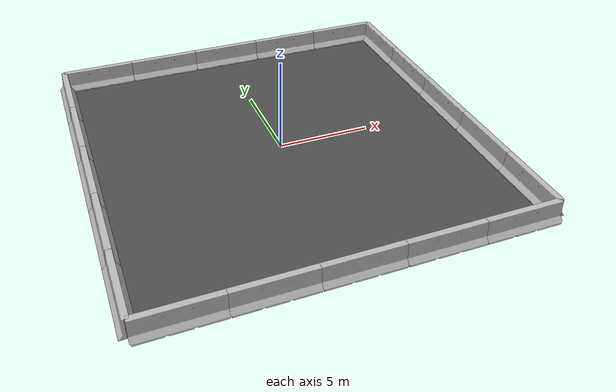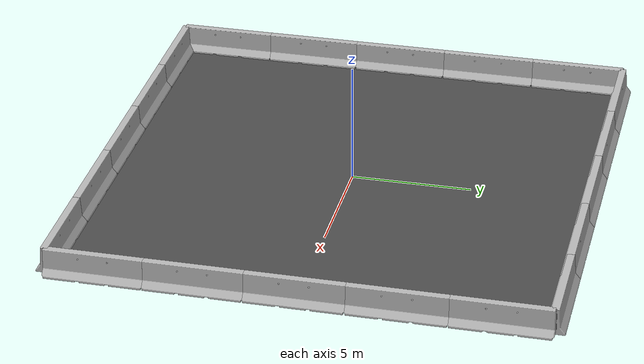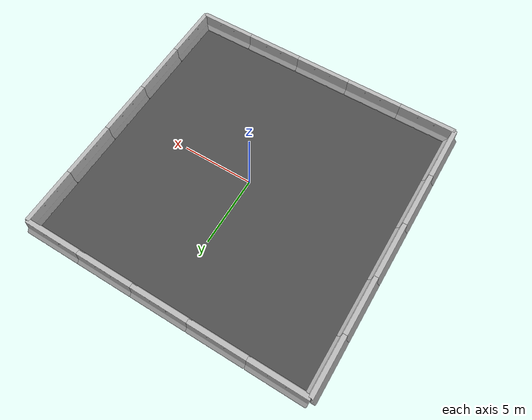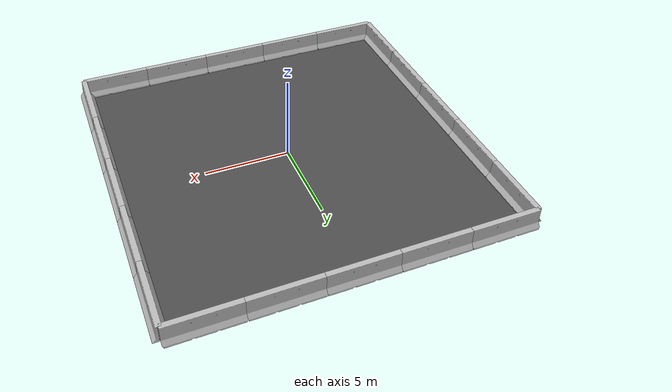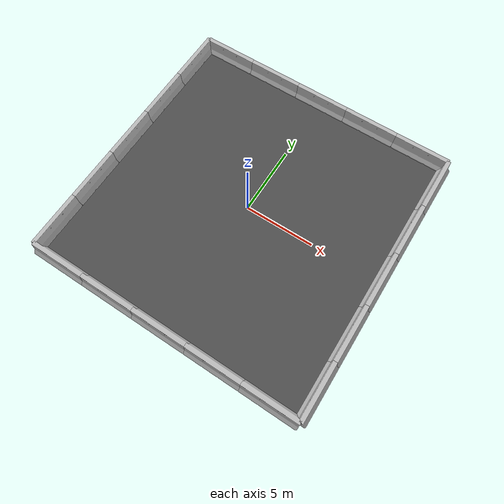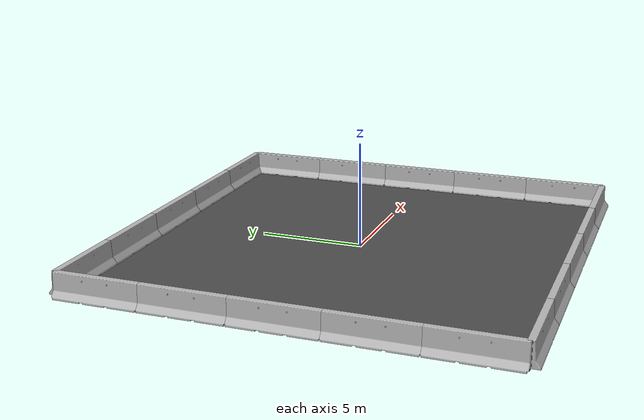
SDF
<sdf version="1.7">
 <world name="default">
  <light name="sun" type="directional">
   <pose>0 0 10 0 -0 0</pose>
   <diffuse>0.8 0.8 0.8 1</diffuse>
   <specular>0.2 0.2 0.2 1</specular>
   <attenuation>
    <range>1000</range>
    <constant>0.9</constant>
    <linear>0.01</linear>
    <quadratic>0.001</quadratic>
   </attenuation>
   <direction>-0.5 0.1 -0.9</direction>
   <spot><inner_angle>0</inner_angle><outer_angle>0</outer_angle><falloff>0</falloff></spot>
  </light>
  <gravity>0 0 -9.8</gravity>
  <magnetic_field>6e-06 2.3e-05 -4.2e-05</magnetic_field>
  <atmosphere type="adiabatic"/>
  <physics type="ode">
   <max_step_size>0.001</max_step_size>
   <real_time_factor>1</real_time_factor>
   <real_time_update_rate>1000</real_time_update_rate>
  </physics>
  <scene><ambient>0.4 0.4 0.4 1</ambient><background>0.7 0.7 0.7 1</background><shadows>1</shadows></scene>
  <spherical_coordinates>
   <surface_model>EARTH_WGS84</surface_model>
   <latitude_deg>0</latitude_deg>
   <longitude_deg>0</longitude_deg>
   <elevation>0</elevation>
   <heading_deg>0</heading_deg>
  </spherical_coordinates>
  <audio><device>default</device></audio>
  <model name="jersey_barrier">
   <static>1</static>
   <link name="link">
    <visual name="visual">
     <geometry><mesh><uri>model://jersey_barrier/meshes/jersey_barrier.dae</uri></mesh></geometry>
    </visual>
    <collision name="upright">
     <pose>0 0 0.5715 0 -0 0</pose>
     <geometry><box><size>4.06542 0.3063 1.143</size></box></geometry>
    </collision>
    <collision name="base">
     <pose>0 0 0.032258 0 -0 0</pose>
     <geometry><box><size>4.06542 0.8107 0.064516</size></box></geometry>
    </collision>
    <collision name="base2">
     <pose>0 0 0.1 0 -0 0</pose>
     <geometry><box><size>4.06542 0.65 0.1</size></box></geometry>
    </collision>
    <collision name="base3">
     <pose>0 0 0.2 0 -0 0</pose>
     <geometry><box><size>4.06542 0.5 0.1</size></box></geometry>
    </collision>
    <collision name="left-angle">
     <pose>0 -0.224 0.2401 0.9 -0 0</pose>
     <geometry><box><size>4.06542 0.5 0.064516</size></box></geometry>
    </collision>
    <collision name="right-angle">
     <pose>0 0.224 0.2401 -0.9 0 0</pose>
     <geometry><box><size>4.06542 0.5 0.064516</size></box></geometry>
    </collision>
   </link>
   <pose>8 10 0 0 -0 0</pose>
  </model>
  <model name="jersey_barrier_0">
   <static>1</static>
   <link name="link">
    <visual name="visual">
     <geometry><mesh><uri>model://jersey_barrier/meshes/jersey_barrier.dae</uri></mesh></geometry>
    </visual>
    <collision name="upright">
     <pose>0 0 0.5715 0 -0 0</pose>
     <geometry><box><size>4.06542 0.3063 1.143</size></box></geometry>
    </collision>
    <collision name="base">
     <pose>0 0 0.032258 0 -0 0</pose>
     <geometry><box><size>4.06542 0.8107 0.064516</size></box></geometry>
    </collision>
    <collision name="base2">
     <pose>0 0 0.1 0 -0 0</pose>
     <geometry><box><size>4.06542 0.65 0.1</size></box></geometry>
    </collision>
    <collision name="base3">
     <pose>0 0 0.2 0 -0 0</pose>
     <geometry><box><size>4.06542 0.5 0.1</size></box></geometry>
    </collision>
    <collision name="left-angle">
     <pose>0 -0.224 0.2401 0.9 -0 0</pose>
     <geometry><box><size>4.06542 0.5 0.064516</size></box></geometry>
    </collision>
    <collision name="right-angle">
     <pose>0 0.224 0.2401 -0.9 0 0</pose>
     <geometry><box><size>4.06542 0.5 0.064516</size></box></geometry>
    </collision>
   </link>
   <pose>4 -10 0 0 -0 0</pose>
  </model>
  <model name="jersey_barrier_1">
   <static>1</static>
   <link name="link">
    <visual name="visual">
     <geometry><mesh><uri>model://jersey_barrier/meshes/jersey_barrier.dae</uri></mesh></geometry>
    </visual>
    <collision name="upright">
     <pose>0 0 0.5715 0 -0 0</pose>
     <geometry><box><size>4.06542 0.3063 1.143</size></box></geometry>
    </collision>
    <collision name="base">
     <pose>0 0 0.032258 0 -0 0</pose>
     <geometry><box><size>4.06542 0.8107 0.064516</size></box></geometry>
    </collision>
    <collision name="base2">
     <pose>0 0 0.1 0 -0 0</pose>
     <geometry><box><size>4.06542 0.65 0.1</size></box></geometry>
    </collision>
    <collision name="base3">
     <pose>0 0 0.2 0 -0 0</pose>
     <geometry><box><size>4.06542 0.5 0.1</size></box></geometry>
    </collision>
    <collision name="left-angle">
     <pose>0 -0.224 0.2401 0.9 -0 0</pose>
     <geometry><box><size>4.06542 0.5 0.064516</size></box></geometry>
    </collision>
    <collision name="right-angle">
     <pose>0 0.224 0.2401 -0.9 0 0</pose>
     <geometry><box><size>4.06542 0.5 0.064516</size></box></geometry>
    </collision>
   </link>
   <pose>-4 10 0 0 -0 0</pose>
  </model>
  <model name="jersey_barrier_2">
   <static>1</static>
   <link name="link">
    <visual name="visual">
     <geometry><mesh><uri>model://jersey_barrier/meshes/jersey_barrier.dae</uri></mesh></geometry>
    </visual>
    <collision name="upright">
     <pose>0 0 0.5715 0 -0 0</pose>
     <geometry><box><size>4.06542 0.3063 1.143</size></box></geometry>
    </collision>
    <collision name="base">
     <pose>0 0 0.032258 0 -0 0</pose>
     <geometry><box><size>4.06542 0.8107 0.064516</size></box></geometry>
    </collision>
    <collision name="base2">
     <pose>0 0 0.1 0 -0 0</pose>
     <geometry><box><size>4.06542 0.65 0.1</size></box></geometry>
    </collision>
    <collision name="base3">
     <pose>0 0 0.2 0 -0 0</pose>
     <geometry><box><size>4.06542 0.5 0.1</size></box></geometry>
    </collision>
    <collision name="left-angle">
     <pose>0 -0.224 0.2401 0.9 -0 0</pose>
     <geometry><box><size>4.06542 0.5 0.064516</size></box></geometry>
    </collision>
    <collision name="right-angle">
     <pose>0 0.224 0.2401 -0.9 0 0</pose>
     <geometry><box><size>4.06542 0.5 0.064516</size></box></geometry>
    </collision>
   </link>
   <pose>0 -10 0 0 -0 0</pose>
  </model>
  <model name="jersey_barrier_3">
   <static>1</static>
   <link name="link">
    <visual name="visual">
     <geometry><mesh><uri>model://jersey_barrier/meshes/jersey_barrier.dae</uri></mesh></geometry>
    </visual>
    <collision name="upright">
     <pose>0 0 0.5715 0 -0 0</pose>
     <geometry><box><size>4.06542 0.3063 1.143</size></box></geometry>
    </collision>
    <collision name="base">
     <pose>0 0 0.032258 0 -0 0</pose>
     <geometry><box><size>4.06542 0.8107 0.064516</size></box></geometry>
    </collision>
    <collision name="base2">
     <pose>0 0 0.1 0 -0 0</pose>
     <geometry><box><size>4.06542 0.65 0.1</size></box></geometry>
    </collision>
    <collision name="base3">
     <pose>0 0 0.2 0 -0 0</pose>
     <geometry><box><size>4.06542 0.5 0.1</size></box></geometry>
    </collision>
    <collision name="left-angle">
     <pose>0 -0.224 0.2401 0.9 -0 0</pose>
     <geometry><box><size>4.06542 0.5 0.064516</size></box></geometry>
    </collision>
    <collision name="right-angle">
     <pose>0 0.224 0.2401 -0.9 0 0</pose>
     <geometry><box><size>4.06542 0.5 0.064516</size></box></geometry>
    </collision>
   </link>
   <pose>0 10 0 0 -0 0</pose>
  </model>
  <model name="jersey_barrier_4">
   <static>1</static>
   <link name="link">
    <visual name="visual">
     <geometry><mesh><uri>model://jersey_barrier/meshes/jersey_barrier.dae</uri></mesh></geometry>
    </visual>
    <collision name="upright">
     <pose>0 0 0.5715 0 -0 0</pose>
     <geometry><box><size>4.06542 0.3063 1.143</size></box></geometry>
    </collision>
    <collision name="base">
     <pose>0 0 0.032258 0 -0 0</pose>
     <geometry><box><size>4.06542 0.8107 0.064516</size></box></geometry>
    </collision>
    <collision name="base2">
     <pose>0 0 0.1 0 -0 0</pose>
     <geometry><box><size>4.06542 0.65 0.1</size></box></geometry>
    </collision>
    <collision name="base3">
     <pose>0 0 0.2 0 -0 0</pose>
     <geometry><box><size>4.06542 0.5 0.1</size></box></geometry>
    </collision>
    <collision name="left-angle">
     <pose>0 -0.224 0.2401 0.9 -0 0</pose>
     <geometry><box><size>4.06542 0.5 0.064516</size></box></geometry>
    </collision>
    <collision name="right-angle">
     <pose>0 0.224 0.2401 -0.9 0 0</pose>
     <geometry><box><size>4.06542 0.5 0.064516</size></box></geometry>
    </collision>
   </link>
   <pose>4 10 0 0 -0 0</pose>
  </model>
  <model name="jersey_barrier_5">
   <static>1</static>
   <link name="link">
    <visual name="visual">
     <geometry><mesh><uri>model://jersey_barrier/meshes/jersey_barrier.dae</uri></mesh></geometry>
    </visual>
    <collision name="upright">
     <pose>0 0 0.5715 0 -0 0</pose>
     <geometry><box><size>4.06542 0.3063 1.143</size></box></geometry>
    </collision>
    <collision name="base">
     <pose>0 0 0.032258 0 -0 0</pose>
     <geometry><box><size>4.06542 0.8107 0.064516</size></box></geometry>
    </collision>
    <collision name="base2">
     <pose>0 0 0.1 0 -0 0</pose>
     <geometry><box><size>4.06542 0.65 0.1</size></box></geometry>
    </collision>
    <collision name="base3">
     <pose>0 0 0.2 0 -0 0</pose>
     <geometry><box><size>4.06542 0.5 0.1</size></box></geometry>
    </collision>
    <collision name="left-angle">
     <pose>0 -0.224 0.2401 0.9 -0 0</pose>
     <geometry><box><size>4.06542 0.5 0.064516</size></box></geometry>
    </collision>
    <collision name="right-angle">
     <pose>0 0.224 0.2401 -0.9 0 0</pose>
     <geometry><box><size>4.06542 0.5 0.064516</size></box></geometry>
    </collision>
   </link>
   <pose>-8 10 0 0 -0 0</pose>
  </model>
  <model name="jersey_barrier_6">
   <static>1</static>
   <link name="link">
    <visual name="visual">
     <geometry><mesh><uri>model://jersey_barrier/meshes/jersey_barrier.dae</uri></mesh></geometry>
    </visual>
    <collision name="upright">
     <pose>0 0 0.5715 0 -0 0</pose>
     <geometry><box><size>4.06542 0.3063 1.143</size></box></geometry>
    </collision>
    <collision name="base">
     <pose>0 0 0.032258 0 -0 0</pose>
     <geometry><box><size>4.06542 0.8107 0.064516</size></box></geometry>
    </collision>
    <collision name="base2">
     <pose>0 0 0.1 0 -0 0</pose>
     <geometry><box><size>4.06542 0.65 0.1</size></box></geometry>
    </collision>
    <collision name="base3">
     <pose>0 0 0.2 0 -0 0</pose>
     <geometry><box><size>4.06542 0.5 0.1</size></box></geometry>
    </collision>
    <collision name="left-angle">
     <pose>0 -0.224 0.2401 0.9 -0 0</pose>
     <geometry><box><size>4.06542 0.5 0.064516</size></box></geometry>
    </collision>
    <collision name="right-angle">
     <pose>0 0.224 0.2401 -0.9 0 0</pose>
     <geometry><box><size>4.06542 0.5 0.064516</size></box></geometry>
    </collision>
   </link>
   <pose>8 -10 0 0 -0 0</pose>
  </model>
  <model name="jersey_barrier_6_clone">
   <static>1</static>
   <link name="link">
    <visual name="visual">
     <geometry><mesh><uri>model://jersey_barrier/meshes/jersey_barrier.dae</uri></mesh></geometry>
    </visual>
    <collision name="upright">
     <pose>0 0 0.5715 0 -0 0</pose>
     <geometry><box><size>4.06542 0.3063 1.143</size></box></geometry>
    </collision>
    <collision name="base">
     <pose>0 0 0.032258 0 -0 0</pose>
     <geometry><box><size>4.06542 0.8107 0.064516</size></box></geometry>
    </collision>
    <collision name="base2">
     <pose>0 0 0.1 0 -0 0</pose>
     <geometry><box><size>4.06542 0.65 0.1</size></box></geometry>
    </collision>
    <collision name="base3">
     <pose>0 0 0.2 0 -0 0</pose>
     <geometry><box><size>4.06542 0.5 0.1</size></box></geometry>
    </collision>
    <collision name="left-angle">
     <pose>0 -0.224 0.2401 0.9 -0 0</pose>
     <geometry><box><size>4.06542 0.5 0.064516</size></box></geometry>
    </collision>
    <collision name="right-angle">
     <pose>0 0.224 0.2401 -0.9 0 0</pose>
     <geometry><box><size>4.06542 0.5 0.064516</size></box></geometry>
    </collision>
   </link>
   <pose>-4 -10 0 0 -0 0</pose>
  </model>
  <model name="jersey_barrier_6_clone_0">
   <static>1</static>
   <link name="link">
    <visual name="visual">
     <geometry><mesh><uri>model://jersey_barrier/meshes/jersey_barrier.dae</uri></mesh></geometry>
    </visual>
    <collision name="upright">
     <pose>0 0 0.5715 0 -0 0</pose>
     <geometry><box><size>4.06542 0.3063 1.143</size></box></geometry>
    </collision>
    <collision name="base">
     <pose>0 0 0.032258 0 -0 0</pose>
     <geometry><box><size>4.06542 0.8107 0.064516</size></box></geometry>
    </collision>
    <collision name="base2">
     <pose>0 0 0.1 0 -0 0</pose>
     <geometry><box><size>4.06542 0.65 0.1</size></box></geometry>
    </collision>
    <collision name="base3">
     <pose>0 0 0.2 0 -0 0</pose>
     <geometry><box><size>4.06542 0.5 0.1</size></box></geometry>
    </collision>
    <collision name="left-angle">
     <pose>0 -0.224 0.2401 0.9 -0 0</pose>
     <geometry><box><size>4.06542 0.5 0.064516</size></box></geometry>
    </collision>
    <collision name="right-angle">
     <pose>0 0.224 0.2401 -0.9 0 0</pose>
     <geometry><box><size>4.06542 0.5 0.064516</size></box></geometry>
    </collision>
   </link>
   <pose>-8 -10 0 0 -0 0</pose>
  </model>
  <model name="jersey_barrier_6_clone_2">
   <static>1</static>
   <link name="link">
    <visual name="visual">
     <geometry><mesh><uri>model://jersey_barrier/meshes/jersey_barrier.dae</uri></mesh></geometry>
    </visual>
    <collision name="upright">
     <pose>0 0 0.5715 0 -0 0</pose>
     <geometry><box><size>4.06542 0.3063 1.143</size></box></geometry>
    </collision>
    <collision name="base">
     <pose>0 0 0.032258 0 -0 0</pose>
     <geometry><box><size>4.06542 0.8107 0.064516</size></box></geometry>
    </collision>
    <collision name="base2">
     <pose>0 0 0.1 0 -0 0</pose>
     <geometry><box><size>4.06542 0.65 0.1</size></box></geometry>
    </collision>
    <collision name="base3">
     <pose>0 0 0.2 0 -0 0</pose>
     <geometry><box><size>4.06542 0.5 0.1</size></box></geometry>
    </collision>
    <collision name="left-angle">
     <pose>0 -0.224 0.2401 0.9 -0 0</pose>
     <geometry><box><size>4.06542 0.5 0.064516</size></box></geometry>
    </collision>
    <collision name="right-angle">
     <pose>0 0.224 0.2401 -0.9 0 0</pose>
     <geometry><box><size>4.06542 0.5 0.064516</size></box></geometry>
    </collision>
   </link>
   <pose>10 -8 0 0 -0 1.57075</pose>
  </model>
  <model name="jersey_barrier_6_clone_3">
   <static>1</static>
   <link name="link">
    <visual name="visual">
     <geometry><mesh><uri>model://jersey_barrier/meshes/jersey_barrier.dae</uri></mesh></geometry>
    </visual>
    <collision name="upright">
     <pose>0 0 0.5715 0 -0 0</pose>
     <geometry><box><size>4.06542 0.3063 1.143</size></box></geometry>
    </collision>
    <collision name="base">
     <pose>0 0 0.032258 0 -0 0</pose>
     <geometry><box><size>4.06542 0.8107 0.064516</size></box></geometry>
    </collision>
    <collision name="base2">
     <pose>0 0 0.1 0 -0 0</pose>
     <geometry><box><size>4.06542 0.65 0.1</size></box></geometry>
    </collision>
    <collision name="base3">
     <pose>0 0 0.2 0 -0 0</pose>
     <geometry><box><size>4.06542 0.5 0.1</size></box></geometry>
    </collision>
    <collision name="left-angle">
     <pose>0 -0.224 0.2401 0.9 -0 0</pose>
     <geometry><box><size>4.06542 0.5 0.064516</size></box></geometry>
    </collision>
    <collision name="right-angle">
     <pose>0 0.224 0.2401 -0.9 0 0</pose>
     <geometry><box><size>4.06542 0.5 0.064516</size></box></geometry>
    </collision>
   </link>
   <pose>10 -4 0 0 -0 1.57075</pose>
  </model>
  <model name="jersey_barrier_6_clone_3_clone">
   <static>1</static>
   <link name="link">
    <visual name="visual">
     <geometry><mesh><uri>model://jersey_barrier/meshes/jersey_barrier.dae</uri></mesh></geometry>
    </visual>
    <collision name="upright">
     <pose>0 0 0.5715 0 -0 0</pose>
     <geometry><box><size>4.06542 0.3063 1.143</size></box></geometry>
    </collision>
    <collision name="base">
     <pose>0 0 0.032258 0 -0 0</pose>
     <geometry><box><size>4.06542 0.8107 0.064516</size></box></geometry>
    </collision>
    <collision name="base2">
     <pose>0 0 0.1 0 -0 0</pose>
     <geometry><box><size>4.06542 0.65 0.1</size></box></geometry>
    </collision>
    <collision name="base3">
     <pose>0 0 0.2 0 -0 0</pose>
     <geometry><box><size>4.06542 0.5 0.1</size></box></geometry>
    </collision>
    <collision name="left-angle">
     <pose>0 -0.224 0.2401 0.9 -0 0</pose>
     <geometry><box><size>4.06542 0.5 0.064516</size></box></geometry>
    </collision>
    <collision name="right-angle">
     <pose>0 0.224 0.2401 -0.9 0 0</pose>
     <geometry><box><size>4.06542 0.5 0.064516</size></box></geometry>
    </collision>
   </link>
   <pose>10 0 0 0 -0 1.57075</pose>
  </model>
  <model name="jersey_barrier_6_clone_3_clone_0">
   <static>1</static>
   <link name="link">
    <visual name="visual">
     <geometry><mesh><uri>model://jersey_barrier/meshes/jersey_barrier.dae</uri></mesh></geometry>
    </visual>
    <collision name="upright">
     <pose>0 0 0.5715 0 -0 0</pose>
     <geometry><box><size>4.06542 0.3063 1.143</size></box></geometry>
    </collision>
    <collision name="base">
     <pose>0 0 0.032258 0 -0 0</pose>
     <geometry><box><size>4.06542 0.8107 0.064516</size></box></geometry>
    </collision>
    <collision name="base2">
     <pose>0 0 0.1 0 -0 0</pose>
     <geometry><box><size>4.06542 0.65 0.1</size></box></geometry>
    </collision>
    <collision name="base3">
     <pose>0 0 0.2 0 -0 0</pose>
     <geometry><box><size>4.06542 0.5 0.1</size></box></geometry>
    </collision>
    <collision name="left-angle">
     <pose>0 -0.224 0.2401 0.9 -0 0</pose>
     <geometry><box><size>4.06542 0.5 0.064516</size></box></geometry>
    </collision>
    <collision name="right-angle">
     <pose>0 0.224 0.2401 -0.9 0 0</pose>
     <geometry><box><size>4.06542 0.5 0.064516</size></box></geometry>
    </collision>
   </link>
   <pose>10 4 0 0 -0 1.57075</pose>
  </model>
  <model name="jersey_barrier_6_clone_3_clone_1">
   <static>1</static>
   <link name="link">
    <visual name="visual">
     <geometry><mesh><uri>model://jersey_barrier/meshes/jersey_barrier.dae</uri></mesh></geometry>
    </visual>
    <collision name="upright">
     <pose>0 0 0.5715 0 -0 0</pose>
     <geometry><box><size>4.06542 0.3063 1.143</size></box></geometry>
    </collision>
    <collision name="base">
     <pose>0 0 0.032258 0 -0 0</pose>
     <geometry><box><size>4.06542 0.8107 0.064516</size></box></geometry>
    </collision>
    <collision name="base2">
     <pose>0 0 0.1 0 -0 0</pose>
     <geometry><box><size>4.06542 0.65 0.1</size></box></geometry>
    </collision>
    <collision name="base3">
     <pose>0 0 0.2 0 -0 0</pose>
     <geometry><box><size>4.06542 0.5 0.1</size></box></geometry>
    </collision>
    <collision name="left-angle">
     <pose>0 -0.224 0.2401 0.9 -0 0</pose>
     <geometry><box><size>4.06542 0.5 0.064516</size></box></geometry>
    </collision>
    <collision name="right-angle">
     <pose>0 0.224 0.2401 -0.9 0 0</pose>
     <geometry><box><size>4.06542 0.5 0.064516</size></box></geometry>
    </collision>
   </link>
   <pose>10 8 0 0 -0 1.57075</pose>
  </model>
  <model name="jersey_barrier_6_clone_3_clone_2">
   <static>1</static>
   <link name="link">
    <visual name="visual">
     <geometry><mesh><uri>model://jersey_barrier/meshes/jersey_barrier.dae</uri></mesh></geometry>
    </visual>
    <collision name="upright">
     <pose>0 0 0.5715 0 -0 0</pose>
     <geometry><box><size>4.06542 0.3063 1.143</size></box></geometry>
    </collision>
    <collision name="base">
     <pose>0 0 0.032258 0 -0 0</pose>
     <geometry><box><size>4.06542 0.8107 0.064516</size></box></geometry>
    </collision>
    <collision name="base2">
     <pose>0 0 0.1 0 -0 0</pose>
     <geometry><box><size>4.06542 0.65 0.1</size></box></geometry>
    </collision>
    <collision name="base3">
     <pose>0 0 0.2 0 -0 0</pose>
     <geometry><box><size>4.06542 0.5 0.1</size></box></geometry>
    </collision>
    <collision name="left-angle">
     <pose>0 -0.224 0.2401 0.9 -0 0</pose>
     <geometry><box><size>4.06542 0.5 0.064516</size></box></geometry>
    </collision>
    <collision name="right-angle">
     <pose>0 0.224 0.2401 -0.9 0 0</pose>
     <geometry><box><size>4.06542 0.5 0.064516</size></box></geometry>
    </collision>
   </link>
   <pose>-10 8 0 0 -0 1.57075</pose>
  </model>
  <model name="jersey_barrier_6_clone_3_clone_2_clone">
   <static>1</static>
   <link name="link">
    <visual name="visual">
     <geometry><mesh><uri>model://jersey_barrier/meshes/jersey_barrier.dae</uri></mesh></geometry>
    </visual>
    <collision name="upright">
     <pose>0 0 0.5715 0 -0 0</pose>
     <geometry><box><size>4.06542 0.3063 1.143</size></box></geometry>
    </collision>
    <collision name="base">
     <pose>0 0 0.032258 0 -0 0</pose>
     <geometry><box><size>4.06542 0.8107 0.064516</size></box></geometry>
    </collision>
    <collision name="base2">
     <pose>0 0 0.1 0 -0 0</pose>
     <geometry><box><size>4.06542 0.65 0.1</size></box></geometry>
    </collision>
    <collision name="base3">
     <pose>0 0 0.2 0 -0 0</pose>
     <geometry><box><size>4.06542 0.5 0.1</size></box></geometry>
    </collision>
    <collision name="left-angle">
     <pose>0 -0.224 0.2401 0.9 -0 0</pose>
     <geometry><box><size>4.06542 0.5 0.064516</size></box></geometry>
    </collision>
    <collision name="right-angle">
     <pose>0 0.224 0.2401 -0.9 0 0</pose>
     <geometry><box><size>4.06542 0.5 0.064516</size></box></geometry>
    </collision>
   </link>
   <pose>-10 0 0 0 -0 1.57075</pose>
  </model>
  <model name="jersey_barrier_6_clone_3_clone_2_clone_0">
   <static>1</static>
   <link name="link">
    <visual name="visual">
     <geometry><mesh><uri>model://jersey_barrier/meshes/jersey_barrier.dae</uri></mesh></geometry>
    </visual>
    <collision name="upright">
     <pose>0 0 0.5715 0 -0 0</pose>
     <geometry><box><size>4.06542 0.3063 1.143</size></box></geometry>
    </collision>
    <collision name="base">
     <pose>0 0 0.032258 0 -0 0</pose>
     <geometry><box><size>4.06542 0.8107 0.064516</size></box></geometry>
    </collision>
    <collision name="base2">
     <pose>0 0 0.1 0 -0 0</pose>
     <geometry><box><size>4.06542 0.65 0.1</size></box></geometry>
    </collision>
    <collision name="base3">
     <pose>0 0 0.2 0 -0 0</pose>
     <geometry><box><size>4.06542 0.5 0.1</size></box></geometry>
    </collision>
    <collision name="left-angle">
     <pose>0 -0.224 0.2401 0.9 -0 0</pose>
     <geometry><box><size>4.06542 0.5 0.064516</size></box></geometry>
    </collision>
    <collision name="right-angle">
     <pose>0 0.224 0.2401 -0.9 0 0</pose>
     <geometry><box><size>4.06542 0.5 0.064516</size></box></geometry>
    </collision>
   </link>
   <pose>-10 4 0 0 -0 1.57075</pose>
  </model>
  <model name="jersey_barrier_6_clone_3_clone_2_clone_1">
   <static>1</static>
   <link name="link">
    <visual name="visual">
     <geometry><mesh><uri>model://jersey_barrier/meshes/jersey_barrier.dae</uri></mesh></geometry>
    </visual>
    <collision name="upright">
     <pose>0 0 0.5715 0 -0 0</pose>
     <geometry><box><size>4.06542 0.3063 1.143</size></box></geometry>
    </collision>
    <collision name="base">
     <pose>0 0 0.032258 0 -0 0</pose>
     <geometry><box><size>4.06542 0.8107 0.064516</size></box></geometry>
    </collision>
    <collision name="base2">
     <pose>0 0 0.1 0 -0 0</pose>
     <geometry><box><size>4.06542 0.65 0.1</size></box></geometry>
    </collision>
    <collision name="base3">
     <pose>0 0 0.2 0 -0 0</pose>
     <geometry><box><size>4.06542 0.5 0.1</size></box></geometry>
    </collision>
    <collision name="left-angle">
     <pose>0 -0.224 0.2401 0.9 -0 0</pose>
     <geometry><box><size>4.06542 0.5 0.064516</size></box></geometry>
    </collision>
    <collision name="right-angle">
     <pose>0 0.224 0.2401 -0.9 0 0</pose>
     <geometry><box><size>4.06542 0.5 0.064516</size></box></geometry>
    </collision>
   </link>
   <pose>-10 -8 0 0 -0 1.57075</pose>
  </model>
  <model name="jersey_barrier_6_clone_3_clone_2_clone_2">
   <static>1</static>
   <link name="link">
    <visual name="visual">
     <geometry><mesh><uri>model://jersey_barrier/meshes/jersey_barrier.dae</uri></mesh></geometry>
    </visual>
    <collision name="upright">
     <pose>0 0 0.5715 0 -0 0</pose>
     <geometry><box><size>4.06542 0.3063 1.143</size></box></geometry>
    </collision>
    <collision name="base">
     <pose>0 0 0.032258 0 -0 0</pose>
     <geometry><box><size>4.06542 0.8107 0.064516</size></box></geometry>
    </collision>
    <collision name="base2">
     <pose>0 0 0.1 0 -0 0</pose>
     <geometry><box><size>4.06542 0.65 0.1</size></box></geometry>
    </collision>
    <collision name="base3">
     <pose>0 0 0.2 0 -0 0</pose>
     <geometry><box><size>4.06542 0.5 0.1</size></box></geometry>
    </collision>
    <collision name="left-angle">
     <pose>0 -0.224 0.2401 0.9 -0 0</pose>
     <geometry><box><size>4.06542 0.5 0.064516</size></box></geometry>
    </collision>
    <collision name="right-angle">
     <pose>0 0.224 0.2401 -0.9 0 0</pose>
     <geometry><box><size>4.06542 0.5 0.064516</size></box></geometry>
    </collision>
   </link>
   <pose>-10 -4 0 0 -0 1.57075</pose>
  </model>
  <model name="asphalt_plane">
   <static>1</static>
   <link name="link">
    <collision name="collision"><geometry><box><size>20 20 0.1</size></box></geometry></collision>
    <visual name="visual">
     <cast_shadows>0</cast_shadows>
     <geometry><box><size>20 20 0.1</size></box></geometry>
     <material>
      <script>
       <uri>model://asphalt_plane/materials/scripts</uri>
       <uri>model://asphalt_plane/materials/textures</uri>
       <name>vrc/asphalt</name>
      </script>
     </material>
    </visual>
   </link>
   <pose>0 0 -0.05 0 -0 0</pose>
  </model>
 </world>
</sdf>
